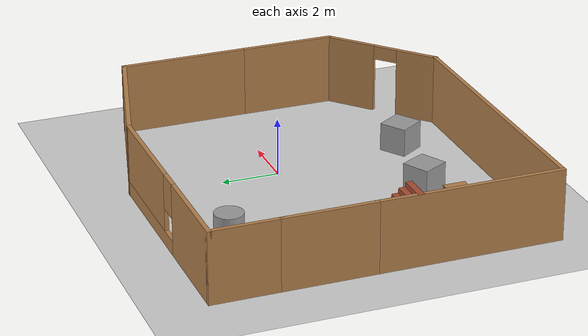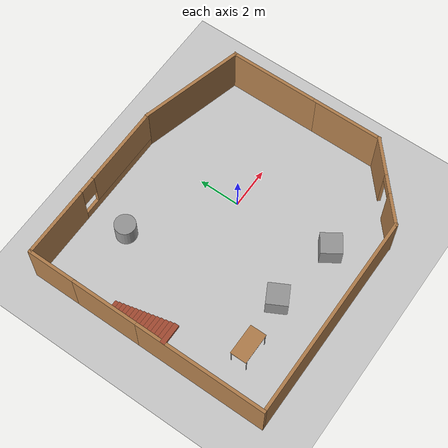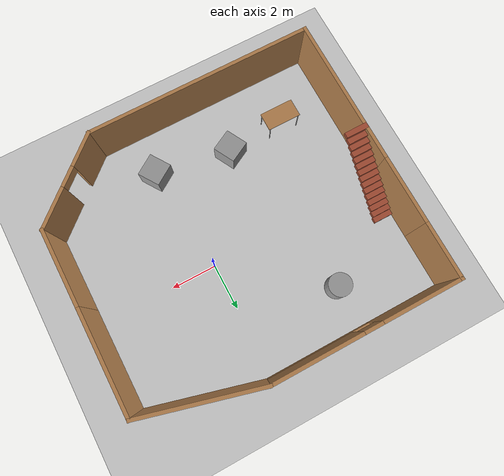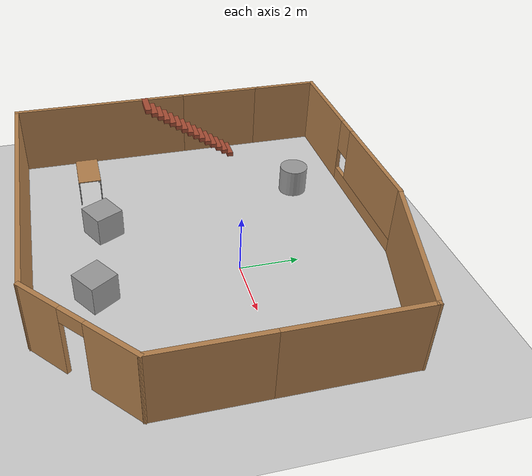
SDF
<sdf version="1.7">
 <world name="default">
  <light name="sun" type="directional">
   <pose>0 0 10 0 -0 0</pose>
   <diffuse>0.8 0.8 0.8 1</diffuse>
   <specular>0.2 0.2 0.2 1</specular>
   <attenuation>
    <range>1000</range>
    <constant>0.9</constant>
    <linear>0.01</linear>
    <quadratic>0.001</quadratic>
   </attenuation>
   <direction>-0.5 0.1 -0.9</direction>
   <spot><inner_angle>0</inner_angle><outer_angle>0</outer_angle><falloff>0</falloff></spot>
  </light>
  <model name="ground_plane">
   <static>1</static>
   <link name="link">
    <collision name="collision">
     <geometry><plane><normal>0 0 1</normal><size>100 100</size></plane></geometry>
     <surface>
      <contact><collide_bitmask>65535</collide_bitmask></contact>
      <friction><ode><mu>100</mu><mu2>50</mu2></ode></friction>
     </surface>
    </collision>
    <visual name="visual">
     <cast_shadows>0</cast_shadows>
     <geometry><plane><normal>0 0 1</normal><size>100 100</size></plane></geometry>
     <material>
      <script><uri>file://media/materials/scripts/gazebo.material</uri><name>Gazebo/Grey</name></script>
     </material>
    </visual>
   </link>
  </model>
  <gravity>0 0 -9.8</gravity>
  <magnetic_field>6e-06 2.3e-05 -4.2e-05</magnetic_field>
  <atmosphere type="adiabatic"/>
  <physics type="ode">
   <max_step_size>0.001</max_step_size>
   <real_time_factor>1</real_time_factor>
   <real_time_update_rate>1000</real_time_update_rate>
  </physics>
  <scene><ambient>0.4 0.4 0.4 1</ambient><background>0.7 0.7 0.7 1</background><shadows>1</shadows></scene>
  <audio><device>default</device></audio>
  <spherical_coordinates>
   <surface_model>EARTH_WGS84</surface_model>
   <latitude_deg>0</latitude_deg>
   <longitude_deg>0</longitude_deg>
   <elevation>0</elevation>
   <heading_deg>0</heading_deg>
  </spherical_coordinates>
  <model name="my_house">
   <pose>-1.29737 -0.805638 0 0 -0 0</pose>
   <link name="Stairs_0">
    <visual name="Stairs_0_Visual_0">
     <pose>-6.09827 2.27659 0.083333 0 -0 0</pose>
     <geometry><box><size>1 0.233333 0.166667</size></box></geometry>
     <material>
      <script><uri>file://media/materials/scripts/gazebo.material</uri><name>Gazebo/Bricks</name></script>
      <ambient>1 1 1 1</ambient>
     </material>
     <meta><layer>0</layer></meta>
    </visual>
    <collision name="Stairs_0_Collision_0">
     <geometry><box><size>1 0.233333 0.166667</size></box></geometry>
     <pose>-6.09827 2.27659 0.083333 0 -0 0</pose>
    </collision>
    <visual name="Stairs_0_Visual_1">
     <pose>-6.09827 2.04326 0.25 0 -0 0</pose>
     <geometry><box><size>1 0.233333 0.166667</size></box></geometry>
     <material>
      <script><uri>file://media/materials/scripts/gazebo.material</uri><name>Gazebo/Bricks</name></script>
      <ambient>1 1 1 1</ambient>
     </material>
     <meta><layer>0</layer></meta>
    </visual>
    <collision name="Stairs_0_Collision_1">
     <geometry><box><size>1 0.233333 0.166667</size></box></geometry>
     <pose>-6.09827 2.04326 0.25 0 -0 0</pose>
    </collision>
    <visual name="Stairs_0_Visual_2">
     <pose>-6.09827 1.80993 0.416667 0 -0 0</pose>
     <geometry><box><size>1 0.233333 0.166667</size></box></geometry>
     <material>
      <script><uri>file://media/materials/scripts/gazebo.material</uri><name>Gazebo/Bricks</name></script>
      <ambient>1 1 1 1</ambient>
     </material>
     <meta><layer>0</layer></meta>
    </visual>
    <collision name="Stairs_0_Collision_2">
     <geometry><box><size>1 0.233333 0.166667</size></box></geometry>
     <pose>-6.09827 1.80993 0.416667 0 -0 0</pose>
    </collision>
    <visual name="Stairs_0_Visual_3">
     <pose>-6.09827 1.57659 0.583333 0 -0 0</pose>
     <geometry><box><size>1 0.233333 0.166667</size></box></geometry>
     <material>
      <script><uri>file://media/materials/scripts/gazebo.material</uri><name>Gazebo/Bricks</name></script>
      <ambient>1 1 1 1</ambient>
     </material>
     <meta><layer>0</layer></meta>
    </visual>
    <collision name="Stairs_0_Collision_3">
     <geometry><box><size>1 0.233333 0.166667</size></box></geometry>
     <pose>-6.09827 1.57659 0.583333 0 -0 0</pose>
    </collision>
    <visual name="Stairs_0_Visual_4">
     <pose>-6.09827 1.34326 0.75 0 -0 0</pose>
     <geometry><box><size>1 0.233333 0.166667</size></box></geometry>
     <material>
      <script><uri>file://media/materials/scripts/gazebo.material</uri><name>Gazebo/Bricks</name></script>
      <ambient>1 1 1 1</ambient>
     </material>
     <meta><layer>0</layer></meta>
    </visual>
    <collision name="Stairs_0_Collision_4">
     <geometry><box><size>1 0.233333 0.166667</size></box></geometry>
     <pose>-6.09827 1.34326 0.75 0 -0 0</pose>
    </collision>
    <visual name="Stairs_0_Visual_5">
     <pose>-6.09827 1.10993 0.916667 0 -0 0</pose>
     <geometry><box><size>1 0.233333 0.166667</size></box></geometry>
     <material>
      <script><uri>file://media/materials/scripts/gazebo.material</uri><name>Gazebo/Bricks</name></script>
      <ambient>1 1 1 1</ambient>
     </material>
     <meta><layer>0</layer></meta>
    </visual>
    <collision name="Stairs_0_Collision_5">
     <geometry><box><size>1 0.233333 0.166667</size></box></geometry>
     <pose>-6.09827 1.10993 0.916667 0 -0 0</pose>
    </collision>
    <visual name="Stairs_0_Visual_6">
     <pose>-6.09827 0.876592 1.08333 0 -0 0</pose>
     <geometry><box><size>1 0.233333 0.166667</size></box></geometry>
     <material>
      <script><uri>file://media/materials/scripts/gazebo.material</uri><name>Gazebo/Bricks</name></script>
      <ambient>1 1 1 1</ambient>
     </material>
     <meta><layer>0</layer></meta>
    </visual>
    <collision name="Stairs_0_Collision_6">
     <geometry><box><size>1 0.233333 0.166667</size></box></geometry>
     <pose>-6.09827 0.876592 1.08333 0 -0 0</pose>
    </collision>
    <visual name="Stairs_0_Visual_7">
     <pose>-6.09827 0.643259 1.25 0 -0 0</pose>
     <geometry><box><size>1 0.233333 0.166667</size></box></geometry>
     <material>
      <script><uri>file://media/materials/scripts/gazebo.material</uri><name>Gazebo/Bricks</name></script>
      <ambient>1 1 1 1</ambient>
     </material>
     <meta><layer>0</layer></meta>
    </visual>
    <collision name="Stairs_0_Collision_7">
     <geometry><box><size>1 0.233333 0.166667</size></box></geometry>
     <pose>-6.09827 0.643259 1.25 0 -0 0</pose>
    </collision>
    <visual name="Stairs_0_Visual_8">
     <pose>-6.09827 0.409926 1.41667 0 -0 0</pose>
     <geometry><box><size>1 0.233333 0.166667</size></box></geometry>
     <material>
      <script><uri>file://media/materials/scripts/gazebo.material</uri><name>Gazebo/Bricks</name></script>
      <ambient>1 1 1 1</ambient>
     </material>
     <meta><layer>0</layer></meta>
    </visual>
    <collision name="Stairs_0_Collision_8">
     <geometry><box><size>1 0.233333 0.166667</size></box></geometry>
     <pose>-6.09827 0.409926 1.41667 0 -0 0</pose>
    </collision>
    <visual name="Stairs_0_Visual_9">
     <pose>-6.09827 0.176592 1.58333 0 -0 0</pose>
     <geometry><box><size>1 0.233333 0.166667</size></box></geometry>
     <material>
      <script><uri>file://media/materials/scripts/gazebo.material</uri><name>Gazebo/Bricks</name></script>
      <ambient>1 1 1 1</ambient>
     </material>
     <meta><layer>0</layer></meta>
    </visual>
    <collision name="Stairs_0_Collision_9">
     <geometry><box><size>1 0.233333 0.166667</size></box></geometry>
     <pose>-6.09827 0.176592 1.58333 0 -0 0</pose>
    </collision>
    <visual name="Stairs_0_Visual_10">
     <pose>-6.09827 -0.056741 1.75 0 -0 0</pose>
     <geometry><box><size>1 0.233333 0.166667</size></box></geometry>
     <material>
      <script><uri>file://media/materials/scripts/gazebo.material</uri><name>Gazebo/Bricks</name></script>
      <ambient>1 1 1 1</ambient>
     </material>
     <meta><layer>0</layer></meta>
    </visual>
    <collision name="Stairs_0_Collision_10">
     <geometry><box><size>1 0.233333 0.166667</size></box></geometry>
     <pose>-6.09827 -0.056741 1.75 0 -0 0</pose>
    </collision>
    <visual name="Stairs_0_Visual_11">
     <pose>-6.09827 -0.290074 1.91667 0 -0 0</pose>
     <geometry><box><size>1 0.233333 0.166667</size></box></geometry>
     <material>
      <script><uri>file://media/materials/scripts/gazebo.material</uri><name>Gazebo/Bricks</name></script>
      <ambient>1 1 1 1</ambient>
     </material>
     <meta><layer>0</layer></meta>
    </visual>
    <collision name="Stairs_0_Collision_11">
     <geometry><box><size>1 0.233333 0.166667</size></box></geometry>
     <pose>-6.09827 -0.290074 1.91667 0 -0 0</pose>
    </collision>
    <visual name="Stairs_0_Visual_12">
     <pose>-6.09827 -0.523408 2.08333 0 -0 0</pose>
     <geometry><box><size>1 0.233333 0.166667</size></box></geometry>
     <material>
      <script><uri>file://media/materials/scripts/gazebo.material</uri><name>Gazebo/Bricks</name></script>
      <ambient>1 1 1 1</ambient>
     </material>
     <meta><layer>0</layer></meta>
    </visual>
    <collision name="Stairs_0_Collision_12">
     <geometry><box><size>1 0.233333 0.166667</size></box></geometry>
     <pose>-6.09827 -0.523408 2.08333 0 -0 0</pose>
    </collision>
    <visual name="Stairs_0_Visual_13">
     <pose>-6.09827 -0.756741 2.25 0 -0 0</pose>
     <geometry><box><size>1 0.233333 0.166667</size></box></geometry>
     <material>
      <script><uri>file://media/materials/scripts/gazebo.material</uri><name>Gazebo/Bricks</name></script>
      <ambient>1 1 1 1</ambient>
     </material>
     <meta><layer>0</layer></meta>
    </visual>
    <collision name="Stairs_0_Collision_13">
     <geometry><box><size>1 0.233333 0.166667</size></box></geometry>
     <pose>-6.09827 -0.756741 2.25 0 -0 0</pose>
    </collision>
    <visual name="Stairs_0_Visual_14">
     <pose>-6.09827 -0.990074 2.41667 0 -0 0</pose>
     <geometry><box><size>1 0.233333 0.166667</size></box></geometry>
     <material>
      <script><uri>file://media/materials/scripts/gazebo.material</uri><name>Gazebo/Bricks</name></script>
      <ambient>1 1 1 1</ambient>
     </material>
     <meta><layer>0</layer></meta>
    </visual>
    <collision name="Stairs_0_Collision_14">
     <geometry><box><size>1 0.233333 0.166667</size></box></geometry>
     <pose>-6.09827 -0.990074 2.41667 0 -0 0</pose>
    </collision>
   </link>
   <link name="Wall_10">
    <collision name="Wall_10_Collision">
     <geometry><box><size>10 0.15 2.5</size></box></geometry>
     <pose>0 0 1.25 0 -0 0</pose>
    </collision>
    <visual name="Wall_10_Visual">
     <pose>0 0 1.25 0 -0 0</pose>
     <geometry><box><size>10 0.15 2.5</size></box></geometry>
     <material>
      <script><uri>file://media/materials/scripts/gazebo.material</uri><name>Gazebo/Wood</name></script>
      <ambient>1 1 1 1</ambient>
     </material>
     <meta><layer>0</layer></meta>
    </visual>
    <pose>-1.60353 -5.89301 0 0 -0 0</pose>
   </link>
   <link name="Wall_14">
    <collision name="Wall_14_Collision">
     <geometry><box><size>3.5 0.15 2.5</size></box></geometry>
     <pose>0 0 1.25 0 -0 0</pose>
    </collision>
    <visual name="Wall_14_Visual">
     <pose>0 0 1.25 0 -0 0</pose>
     <geometry><box><size>3.5 0.15 2.5</size></box></geometry>
     <material>
      <script><uri>file://media/materials/scripts/gazebo.material</uri><name>Gazebo/Wood</name></script>
      <ambient>1 1 1 1</ambient>
     </material>
     <meta><layer>0</layer></meta>
    </visual>
    <pose>6.4977 -1.43799 0 0 -0 -1.5708</pose>
   </link>
   <link name="Wall_15">
    <pose>4.90958 -4.503 0 0 -0 -2.42261</pose>
    <visual name="Wall_15_Visual_0">
     <pose>-1.23531 0 1.25 0 -0 0</pose>
     <geometry><box><size>1.9004 0.15 2.5</size></box></geometry>
     <material>
      <script><uri>file://media/materials/scripts/gazebo.material</uri><name>Gazebo/Wood</name></script>
      <ambient>1 1 1 1</ambient>
     </material>
     <meta><layer>0</layer></meta>
    </visual>
    <collision name="Wall_15_Collision_0">
     <geometry><box><size>1.9004 0.15 2.5</size></box></geometry>
     <pose>-1.23531 0 1.25 0 -0 0</pose>
    </collision>
    <visual name="Wall_15_Visual_1">
     <pose>1.4002 0 1.25 0 -0 0</pose>
     <geometry><box><size>1.57061 0.15 2.5</size></box></geometry>
     <material>
      <script><uri>file://media/materials/scripts/gazebo.material</uri><name>Gazebo/Wood</name></script>
      <ambient>1 1 1 1</ambient>
     </material>
     <meta><layer>0</layer></meta>
    </visual>
    <collision name="Wall_15_Collision_1">
     <geometry><box><size>1.57061 0.15 2.5</size></box></geometry>
     <pose>1.4002 0 1.25 0 -0 0</pose>
    </collision>
    <visual name="Wall_15_Visual_2">
     <pose>0.164894 0 2.25 0 -0 0</pose>
     <geometry><box><size>0.9 0.15 0.5</size></box></geometry>
     <material>
      <script><uri>file://media/materials/scripts/gazebo.material</uri><name>Gazebo/Wood</name></script>
      <ambient>1 1 1 1</ambient>
     </material>
     <meta><layer>0</layer></meta>
    </visual>
    <collision name="Wall_15_Collision_2">
     <geometry><box><size>0.9 0.15 0.5</size></box></geometry>
     <pose>0.164894 0 2.25 0 -0 0</pose>
    </collision>
   </link>
   <link name="Wall_3">
    <collision name="Wall_3_Collision">
     <geometry><box><size>3.25 0.15 2.5</size></box></geometry>
     <pose>0 0 1.25 0 -0 0</pose>
    </collision>
    <visual name="Wall_3_Visual">
     <pose>0 0 1.25 0 -0 0</pose>
     <geometry><box><size>3.25 0.15 2.5</size></box></geometry>
     <material>
      <script><uri>file://media/materials/scripts/gazebo.material</uri><name>Gazebo/Wood</name></script>
      <ambient>1 1 1 1</ambient>
     </material>
     <meta><layer>0</layer></meta>
    </visual>
    <pose>-6.52853 2.00699 0 0 -0 1.5708</pose>
   </link>
   <link name="Wall_4">
    <collision name="Wall_4_Collision">
     <geometry><box><size>2.5 0.15 2.5</size></box></geometry>
     <pose>0 0 1.25 0 -0 0</pose>
    </collision>
    <visual name="Wall_4_Visual">
     <pose>0 0 1.25 0 -0 0</pose>
     <geometry><box><size>2.5 0.15 2.5</size></box></geometry>
     <material>
      <script><uri>file://media/materials/scripts/gazebo.material</uri><name>Gazebo/Wood</name></script>
      <ambient>1 1 1 1</ambient>
     </material>
     <meta><layer>0</layer></meta>
    </visual>
    <pose>-6.52853 4.73199 0 0 -0 1.5708</pose>
   </link>
   <link name="Wall_5">
    <pose>-2.47853 5.90699 0 0 -0 0</pose>
    <visual name="Wall_5_Visual_0">
     <pose>-2.38384 0 1.25 0 -0 0</pose>
     <geometry><box><size>3.48232 0.15 2.5</size></box></geometry>
     <material>
      <script><uri>file://media/materials/scripts/gazebo.material</uri><name>Gazebo/Wood</name></script>
      <ambient>1 1 1 1</ambient>
     </material>
     <meta><layer>0</layer></meta>
    </visual>
    <collision name="Wall_5_Collision_0">
     <geometry><box><size>3.48232 0.15 2.5</size></box></geometry>
     <pose>-2.38384 0 1.25 0 -0 0</pose>
    </collision>
    <visual name="Wall_5_Visual_1">
     <pose>1.74116 0 0.25 0 -0 0</pose>
     <geometry><box><size>4.76768 0.15 0.5</size></box></geometry>
     <material>
      <script><uri>file://media/materials/scripts/gazebo.material</uri><name>Gazebo/Wood</name></script>
      <ambient>1 1 1 1</ambient>
     </material>
     <meta><layer>0</layer></meta>
    </visual>
    <collision name="Wall_5_Collision_1">
     <geometry><box><size>4.76768 0.15 0.5</size></box></geometry>
     <pose>1.74116 0 0.25 0 -0 0</pose>
    </collision>
    <visual name="Wall_5_Visual_2">
     <pose>2.14116 0 1.5 0 -0 0</pose>
     <geometry><box><size>3.96768 0.15 2</size></box></geometry>
     <material>
      <script><uri>file://media/materials/scripts/gazebo.material</uri><name>Gazebo/Wood</name></script>
      <ambient>1 1 1 1</ambient>
     </material>
     <meta><layer>0</layer></meta>
    </visual>
    <collision name="Wall_5_Collision_2">
     <geometry><box><size>3.96768 0.15 2</size></box></geometry>
     <pose>2.14116 0 1.5 0 -0 0</pose>
    </collision>
    <visual name="Wall_5_Visual_3">
     <pose>-0.242677 0 1.9 0 -0 0</pose>
     <geometry><box><size>0.8 0.15 1.2</size></box></geometry>
     <material>
      <script><uri>file://media/materials/scripts/gazebo.material</uri><name>Gazebo/Wood</name></script>
      <ambient>1 1 1 1</ambient>
     </material>
     <meta><layer>0</layer></meta>
    </visual>
    <collision name="Wall_5_Collision_3">
     <geometry><box><size>0.8 0.15 1.2</size></box></geometry>
     <pose>-0.242677 0 1.9 0 -0 0</pose>
    </collision>
   </link>
   <link name="Wall_6">
    <collision name="Wall_6_Collision">
     <geometry><box><size>5.25 0.15 2.5</size></box></geometry>
     <pose>0 0 1.25 0 -0 0</pose>
    </collision>
    <visual name="Wall_6_Visual">
     <pose>0 0 1.25 0 -0 0</pose>
     <geometry><box><size>5.25 0.15 2.5</size></box></geometry>
     <material>
      <script><uri>file://media/materials/scripts/gazebo.material</uri><name>Gazebo/Wood</name></script>
      <ambient>1 1 1 1</ambient>
     </material>
     <meta><layer>0</layer></meta>
    </visual>
    <pose>4.03458 5.247 0 0 -0 -0.261799</pose>
   </link>
   <link name="Wall_7">
    <collision name="Wall_7_Collision">
     <geometry><box><size>4.5 0.15 2.5</size></box></geometry>
     <pose>0 0 1.25 0 -0 0</pose>
    </collision>
    <visual name="Wall_7_Visual">
     <pose>0 0 1.25 0 -0 0</pose>
     <geometry><box><size>4.5 0.15 2.5</size></box></geometry>
     <material>
      <script><uri>file://media/materials/scripts/gazebo.material</uri><name>Gazebo/Wood</name></script>
      <ambient>1 1 1 1</ambient>
     </material>
     <meta><layer>0</layer></meta>
    </visual>
    <pose>6.4977 2.41201 0 0 -0 -1.5708</pose>
   </link>
   <link name="Wall_9">
    <collision name="Wall_9_Collision">
     <geometry><box><size>6.5 0.15 2.5</size></box></geometry>
     <pose>0 0 1.25 0 -0 0</pose>
    </collision>
    <visual name="Wall_9_Visual">
     <pose>0 0 1.25 0 -0 0</pose>
     <geometry><box><size>6.5 0.15 2.5</size></box></geometry>
     <material>
      <script><uri>file://media/materials/scripts/gazebo.material</uri><name>Gazebo/Wood</name></script>
      <ambient>1 1 1 1</ambient>
     </material>
     <meta><layer>0</layer></meta>
    </visual>
    <pose>-6.52853 -2.71801 0 0 -0 -1.5708</pose>
   </link>
   <static>1</static>
  </model>
  <model name="table">
   <static>1</static>
   <link name="link">
    <collision name="surface">
     <pose>0 0 1 0 -0 0</pose>
     <geometry><box><size>1.5 0.8 0.03</size></box></geometry>
     <surface><friction><ode><mu>0.6</mu><mu2>0.6</mu2></ode></friction></surface>
    </collision>
    <visual name="visual1">
     <pose>0 0 1 0 -0 0</pose>
     <geometry><box><size>1.5 0.8 0.03</size></box></geometry>
     <material>
      <script><uri>file://media/materials/scripts/gazebo.material</uri><name>Gazebo/Wood</name></script>
     </material>
    </visual>
    <collision name="front_left_leg">
     <pose>0.68 0.38 0.5 0 -0 0</pose>
     <geometry><cylinder><radius>0.02</radius><length>1</length></cylinder></geometry>
    </collision>
    <visual name="front_left_leg">
     <pose>0.68 0.38 0.5 0 -0 0</pose>
     <geometry><cylinder><radius>0.02</radius><length>1</length></cylinder></geometry>
     <material>
      <script><uri>file://media/materials/scripts/gazebo.material</uri><name>Gazebo/Grey</name></script>
     </material>
    </visual>
    <collision name="front_right_leg">
     <pose>0.68 -0.38 0.5 0 -0 0</pose>
     <geometry><cylinder><radius>0.02</radius><length>1</length></cylinder></geometry>
    </collision>
    <visual name="front_right_leg">
     <pose>0.68 -0.38 0.5 0 -0 0</pose>
     <geometry><cylinder><radius>0.02</radius><length>1</length></cylinder></geometry>
     <material>
      <script><uri>file://media/materials/scripts/gazebo.material</uri><name>Gazebo/Grey</name></script>
     </material>
    </visual>
    <collision name="back_right_leg">
     <pose>-0.68 -0.38 0.5 0 -0 0</pose>
     <geometry><cylinder><radius>0.02</radius><length>1</length></cylinder></geometry>
    </collision>
    <visual name="back_right_leg">
     <pose>-0.68 -0.38 0.5 0 -0 0</pose>
     <geometry><cylinder><radius>0.02</radius><length>1</length></cylinder></geometry>
     <material>
      <script><uri>file://media/materials/scripts/gazebo.material</uri><name>Gazebo/Grey</name></script>
     </material>
    </visual>
    <collision name="back_left_leg">
     <pose>-0.68 0.38 0.5 0 -0 0</pose>
     <geometry><cylinder><radius>0.02</radius><length>1</length></cylinder></geometry>
    </collision>
    <visual name="back_left_leg">
     <pose>-0.68 0.38 0.5 0 -0 0</pose>
     <geometry><cylinder><radius>0.02</radius><length>1</length></cylinder></geometry>
     <material>
      <script><uri>file://media/materials/scripts/gazebo.material</uri><name>Gazebo/Grey</name></script>
     </material>
    </visual>
   </link>
   <pose>-5.47758 -4.36292 0 0 -0 0</pose>
  </model>
  <model name="unit_box">
   <pose>0.390263 -4.68393 0.5 0 -0 0.584021</pose>
   <link name="link">
    <inertial>
     <mass>1</mass>
     <inertia>
      <ixx>0.166667</ixx>
      <ixy>0</ixy>
      <ixz>0</ixz>
      <iyy>0.166667</iyy>
      <iyz>0</iyz>
      <izz>0.166667</izz>
     </inertia>
    </inertial>
    <collision name="collision"><geometry><box><size>1 1 1</size></box></geometry></collision>
    <visual name="visual">
     <geometry><box><size>1 1 1</size></box></geometry>
     <material>
      <script><name>Gazebo/Grey</name><uri>file://media/materials/scripts/gazebo.material</uri></script>
     </material>
    </visual>
   </link>
  </model>
  <model name="unit_cylinder">
   <pose>-4.06068 3.1696 0.499997 3e-06 4e-06 -0</pose>
   <link name="link">
    <inertial>
     <mass>1</mass>
     <inertia><ixx>0.145833</ixx><ixy>0</ixy><ixz>0</ixz><iyy>0.145833</iyy><iyz>0</iyz><izz>0.125</izz></inertia>
    </inertial>
    <collision name="collision">
     <geometry><cylinder><radius>0.5</radius><length>1</length></cylinder></geometry>
    </collision>
    <visual name="visual">
     <geometry><cylinder><radius>0.5</radius><length>1</length></cylinder></geometry>
     <material>
      <script><name>Gazebo/Grey</name><uri>file://media/materials/scripts/gazebo.material</uri></script>
     </material>
    </visual>
   </link>
  </model>
  <model name="unit_box_0">
   <pose>-2.92079 -4.12286 0.5 0 0 -1.0823</pose>
   <link name="link">
    <inertial>
     <mass>1</mass>
     <inertia>
      <ixx>0.166667</ixx>
      <ixy>0</ixy>
      <ixz>0</ixz>
      <iyy>0.166667</iyy>
      <iyz>0</iyz>
      <izz>0.166667</izz>
     </inertia>
    </inertial>
    <collision name="collision"><geometry><box><size>1 1 1</size></box></geometry></collision>
    <visual name="visual">
     <geometry><box><size>1 1 1</size></box></geometry>
     <material>
      <script><name>Gazebo/Grey</name><uri>file://media/materials/scripts/gazebo.material</uri></script>
     </material>
    </visual>
   </link>
  </model>
 </world>
</sdf>
